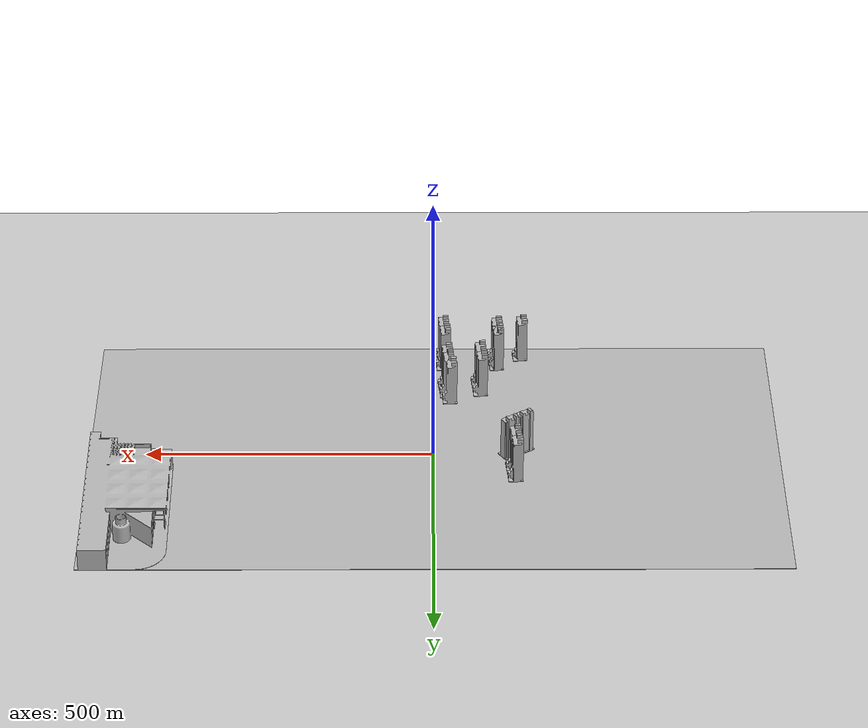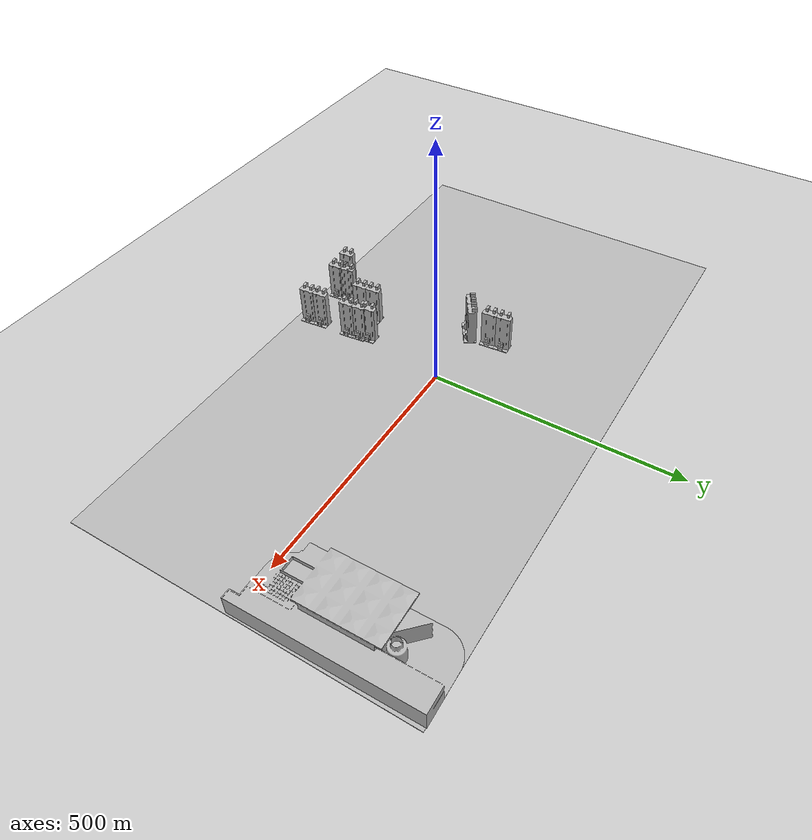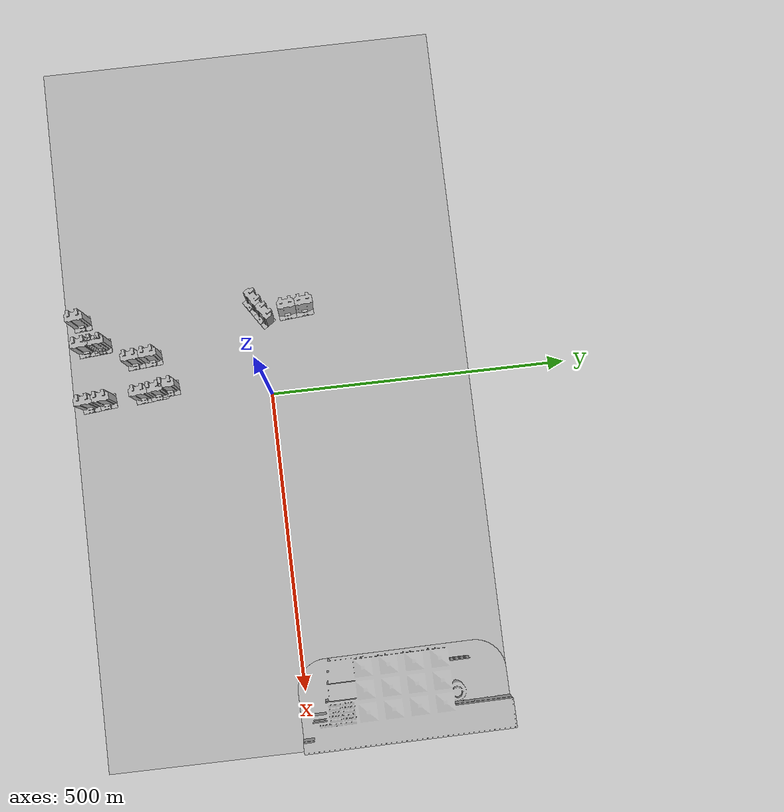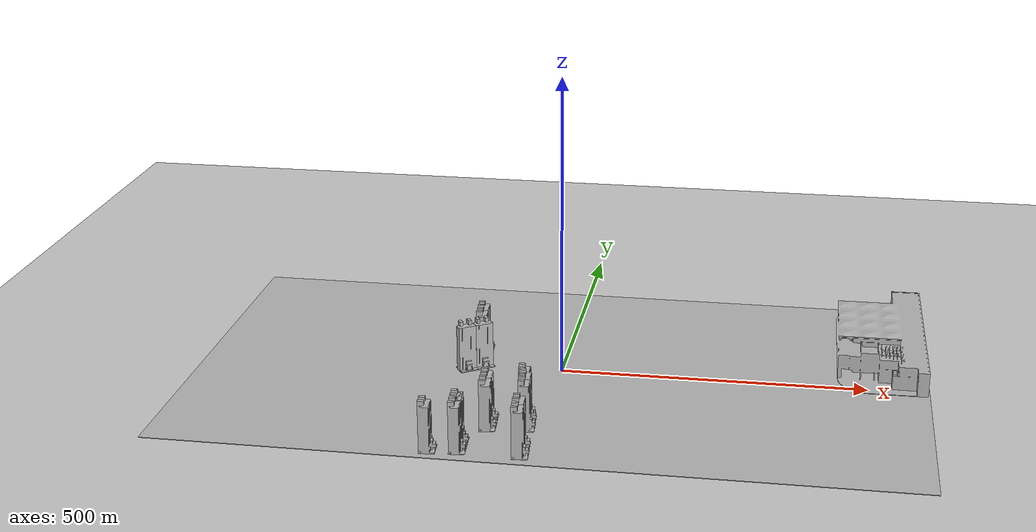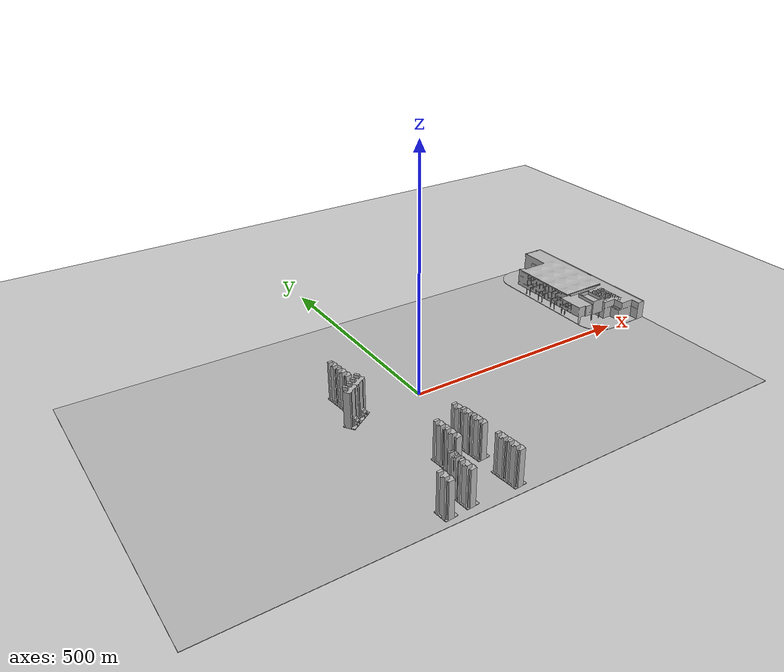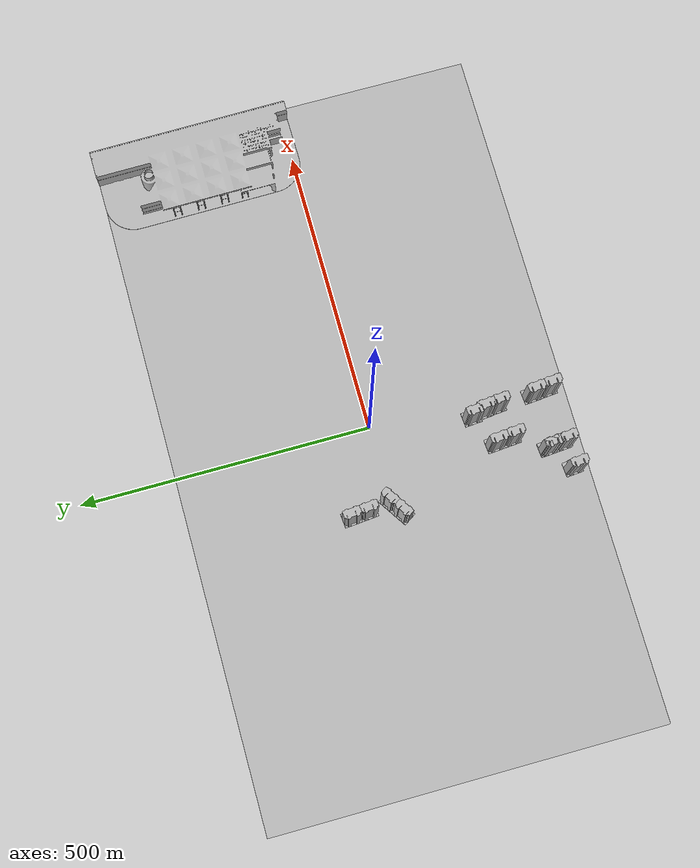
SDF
<sdf version="1.7">
 <world name="default">
  <model name="ground_plane">
   <static>1</static>
   <link name="link">
    <collision name="collision">
     <geometry><plane><normal>0 0 1</normal><size>1200 675</size></plane></geometry>
     <surface><friction><ode><mu>100</mu><mu2>50</mu2></ode></friction></surface>
    </collision>
    <visual name="visual">
     <cast_shadows>0</cast_shadows>
     <geometry><plane><normal>0 0 1</normal><size>1200 675</size></plane></geometry>
     <material>
      <script><uri>file://media/materials/scripts/gazebo.material</uri><name>Gazebo/Grey</name></script>
     </material>
    </visual>
   </link>
  </model>
  <model name="plane">
   <static>1</static>
   <link name="link_0">
    <inertial>
     <mass>1</mass>
     <inertia>
      <ixx>0.166667</ixx>
      <ixy>0</ixy>
      <ixz>0</ixz>
      <iyy>0.166667</iyy>
      <iyz>0</iyz>
      <izz>0.166667</izz>
     </inertia>
    </inertial>
    <pose>-1.2e-05 0 0 0 -0 0</pose>
    <visual name="visual">
     <geometry>
      <mesh><uri>/home/leejeonghun/model_editor_models/plane/scripts/plane.dae</uri><scale>1 1 1</scale></mesh>
     </geometry>
     <material>
      <lighting>1</lighting>
      <script>
       <uri>/home/leejeonghun/model_editor_models/plane/scripts/plane.jpg</uri>
       <name>__default__</name>
      </script>
      <shader type="pixel"/>
     </material>
    </visual>
    <collision name="collision">
     <geometry>
      <mesh><uri>/home/leejeonghun/model_editor_models/plane/scripts/plane.dae</uri><scale>1 1 1</scale></mesh>
     </geometry>
     <surface>
      <friction>
       <ode><mu>1</mu><mu2>1</mu2><fdir1>0 0 0</fdir1><slip1>0</slip1><slip2>0</slip2></ode>
       <torsional>
        <coefficient>1</coefficient>
        <patch_radius>0</patch_radius>
        <surface_radius>0</surface_radius>
        <use_patch_radius>1</use_patch_radius>
        <ode><slip>0</slip></ode>
       </torsional>
      </friction>
      <bounce><restitution_coefficient>0</restitution_coefficient><threshold>1e+06</threshold></bounce>
      <contact>
       <collide_without_contact>0</collide_without_contact>
       <collide_without_contact_bitmask>1</collide_without_contact_bitmask>
       <collide_bitmask>1</collide_bitmask>
       <ode>
        <soft_cfm>0</soft_cfm>
        <soft_erp>0.2</soft_erp>
        <kp>1e+13</kp>
        <kd>1</kd>
        <max_vel>0.01</max_vel>
        <min_depth>0</min_depth>
       </ode>
       <bullet>
        <split_impulse>1</split_impulse>
        <split_impulse_penetration_threshold>-0.01</split_impulse_penetration_threshold>
        <soft_cfm>0</soft_cfm>
        <soft_erp>0.2</soft_erp>
        <kp>1e+13</kp>
        <kd>1</kd>
       </bullet>
      </contact>
     </surface>
    </collision>
   </link>
   <static>0</static>
   <pose>-1.96292 -0.549666 0 0 -0 0</pose>
  </model>
  <model name="airport">
   <static>1</static>
   <link name="link_0">
    <inertial>
     <mass>1</mass>
     <inertia>
      <ixx>0.166667</ixx>
      <ixy>0</ixy>
      <ixz>0</ixz>
      <iyy>0.166667</iyy>
      <iyz>0</iyz>
      <izz>0.166667</izz>
     </inertia>
    </inertial>
    <pose>4e-06 1e-06 0 0 -0 1.58504</pose>
    <visual name="visual">
     <geometry>
      <mesh>
       <uri>/home/leejeonghun/model_editor_models/airport/scripts/airport.dae</uri>
       <scale>0.6 0.6 0.8</scale>
      </mesh>
     </geometry>
     <material>
      <lighting>1</lighting>
      <script>
       <uri>/home/leejeonghun/model_editor_models/airport/scripts/airporrt.jpg</uri>
       <name>__default__</name>
      </script>
      <shader type="pixel"><normal_map>__default__</normal_map></shader>
     </material>
    </visual>
    <collision name="collision">
     <geometry>
      <mesh>
       <uri>/home/leejeonghun/model_editor_models/airport/scripts/airport.dae</uri>
       <scale>0.6 0.6 0.8</scale>
      </mesh>
     </geometry>
     <surface>
      <friction>
       <ode><mu>1</mu><mu2>1</mu2><fdir1>0 0 0</fdir1><slip1>0</slip1><slip2>0</slip2></ode>
       <torsional>
        <coefficient>1</coefficient>
        <patch_radius>0</patch_radius>
        <surface_radius>0</surface_radius>
        <use_patch_radius>1</use_patch_radius>
        <ode><slip>0</slip></ode>
       </torsional>
      </friction>
      <bounce><restitution_coefficient>0</restitution_coefficient><threshold>1e+06</threshold></bounce>
      <contact>
       <collide_without_contact>0</collide_without_contact>
       <collide_without_contact_bitmask>1</collide_without_contact_bitmask>
       <collide_bitmask>1</collide_bitmask>
       <ode>
        <soft_cfm>0</soft_cfm>
        <soft_erp>0.2</soft_erp>
        <kp>1e+13</kp>
        <kd>1</kd>
        <max_vel>0.01</max_vel>
        <min_depth>0</min_depth>
       </ode>
       <bullet>
        <split_impulse>1</split_impulse>
        <split_impulse_penetration_threshold>-0.01</split_impulse_penetration_threshold>
        <soft_cfm>0</soft_cfm>
        <soft_erp>0.2</soft_erp>
        <kp>1e+13</kp>
        <kd>1</kd>
       </bullet>
      </contact>
     </surface>
    </collision>
   </link>
   <static>0</static>
   <pose>500.172 162.388 0.746826 0 -0 3.13851</pose>
  </model>
  <model name="apartment">
   <static>1</static>
   <link name="link_0">
    <inertial>
     <mass>1</mass>
     <inertia>
      <ixx>0.166667</ixx>
      <ixy>0</ixy>
      <ixz>0</ixz>
      <iyy>0.166667</iyy>
      <iyz>0</iyz>
      <izz>0.166667</izz>
     </inertia>
    </inertial>
    <pose>0.000226 2e-06 0 0 -0 0</pose>
    <visual name="visual">
     <geometry>
      <mesh>
       <uri>/home/leejeonghun/model_editor_models/apartment/scripts/apartment.dae</uri>
       <scale>0.4 0.4 0.5</scale>
      </mesh>
     </geometry>
     <material>
      <lighting>1</lighting>
      <script>
       <uri>/home/leejeonghun/model_editor_models/apartment/scripts/building.jpg</uri>
       <name>__default__</name>
      </script>
      <shader type="pixel"/>
     </material>
    </visual>
    <collision name="collision">
     <geometry>
      <mesh>
       <uri>/home/leejeonghun/model_editor_models/apartment/scripts/apartment.dae</uri>
       <scale>0.4 0.4 0.5</scale>
      </mesh>
     </geometry>
     <surface>
      <friction>
       <ode><mu>1</mu><mu2>1</mu2><fdir1>0 0 0</fdir1><slip1>0</slip1><slip2>0</slip2></ode>
       <torsional>
        <coefficient>1</coefficient>
        <patch_radius>0</patch_radius>
        <surface_radius>0</surface_radius>
        <use_patch_radius>1</use_patch_radius>
        <ode><slip>0</slip></ode>
       </torsional>
      </friction>
      <bounce><restitution_coefficient>0</restitution_coefficient><threshold>1e+06</threshold></bounce>
      <contact>
       <collide_without_contact>0</collide_without_contact>
       <collide_without_contact_bitmask>1</collide_without_contact_bitmask>
       <collide_bitmask>1</collide_bitmask>
       <ode>
        <soft_cfm>0</soft_cfm>
        <soft_erp>0.2</soft_erp>
        <kp>1e+13</kp>
        <kd>1</kd>
        <max_vel>0.01</max_vel>
        <min_depth>0</min_depth>
       </ode>
       <bullet>
        <split_impulse>1</split_impulse>
        <split_impulse_penetration_threshold>-0.01</split_impulse_penetration_threshold>
        <soft_cfm>0</soft_cfm>
        <soft_erp>0.2</soft_erp>
        <kp>1e+13</kp>
        <kd>1</kd>
       </bullet>
      </contact>
     </surface>
    </collision>
   </link>
   <static>0</static>
   <pose>-157.514 -14.5633 1.45895 0 -0 0.586882</pose>
  </model>
  <model name="apartment_clone">
   <static>1</static>
   <link name="link_0">
    <inertial>
     <mass>1</mass>
     <inertia>
      <ixx>0.166667</ixx>
      <ixy>0</ixy>
      <ixz>0</ixz>
      <iyy>0.166667</iyy>
      <iyz>0</iyz>
      <izz>0.166667</izz>
     </inertia>
    </inertial>
    <pose>0.000226 2e-06 0 0 -0 0</pose>
    <visual name="visual">
     <geometry>
      <mesh>
       <uri>/home/leejeonghun/model_editor_models/apartment/scripts/apartment.dae</uri>
       <scale>0.4 0.4 0.5</scale>
      </mesh>
     </geometry>
     <material>
      <lighting>1</lighting>
      <script>
       <uri>/home/leejeonghun/model_editor_models/apartment/scripts/building.jpg</uri>
       <name>__default__</name>
      </script>
      <shader type="pixel"/>
     </material>
    </visual>
    <collision name="collision">
     <geometry>
      <mesh>
       <uri>/home/leejeonghun/model_editor_models/apartment/scripts/apartment.dae</uri>
       <scale>0.4 0.4 0.5</scale>
      </mesh>
     </geometry>
     <surface>
      <friction>
       <ode><mu>1</mu><mu2>1</mu2><fdir1>0 0 0</fdir1><slip1>0</slip1><slip2>0</slip2></ode>
       <torsional>
        <coefficient>1</coefficient>
        <patch_radius>0</patch_radius>
        <surface_radius>0</surface_radius>
        <use_patch_radius>1</use_patch_radius>
        <ode><slip>0</slip></ode>
       </torsional>
      </friction>
      <bounce><restitution_coefficient>0</restitution_coefficient><threshold>1e+06</threshold></bounce>
      <contact>
       <collide_without_contact>0</collide_without_contact>
       <collide_without_contact_bitmask>1</collide_without_contact_bitmask>
       <collide_bitmask>1</collide_bitmask>
       <ode>
        <soft_cfm>0</soft_cfm>
        <soft_erp>0.2</soft_erp>
        <kp>1e+13</kp>
        <kd>1</kd>
        <max_vel>0.01</max_vel>
        <min_depth>0</min_depth>
       </ode>
       <bullet>
        <split_impulse>1</split_impulse>
        <split_impulse_penetration_threshold>-0.01</split_impulse_penetration_threshold>
        <soft_cfm>0</soft_cfm>
        <soft_erp>0.2</soft_erp>
        <kp>1e+13</kp>
        <kd>1</kd>
       </bullet>
      </contact>
     </surface>
    </collision>
   </link>
   <static>0</static>
   <pose>-132.523 1.79712 1.45895 0 -0 0.586882</pose>
  </model>
  <model name="apartment_clone_8">
   <static>1</static>
   <link name="link_0">
    <inertial>
     <mass>1</mass>
     <inertia>
      <ixx>0.166667</ixx>
      <ixy>0</ixy>
      <ixz>0</ixz>
      <iyy>0.166667</iyy>
      <iyz>0</iyz>
      <izz>0.166667</izz>
     </inertia>
    </inertial>
    <pose>0.000226 2e-06 0 0 -0 0</pose>
    <visual name="visual">
     <geometry>
      <mesh>
       <uri>/home/leejeonghun/model_editor_models/apartment/scripts/apartment.dae</uri>
       <scale>0.4 0.4 0.5</scale>
      </mesh>
     </geometry>
     <material>
      <lighting>1</lighting>
      <script>
       <uri>/home/leejeonghun/model_editor_models/apartment/scripts/building.jpg</uri>
       <name>__default__</name>
      </script>
      <shader type="pixel"/>
     </material>
    </visual>
    <collision name="collision">
     <geometry>
      <mesh>
       <uri>/home/leejeonghun/model_editor_models/apartment/scripts/apartment.dae</uri>
       <scale>0.4 0.4 0.5</scale>
      </mesh>
     </geometry>
     <surface>
      <friction>
       <ode><mu>1</mu><mu2>1</mu2><fdir1>0 0 0</fdir1><slip1>0</slip1><slip2>0</slip2></ode>
       <torsional>
        <coefficient>1</coefficient>
        <patch_radius>0</patch_radius>
        <surface_radius>0</surface_radius>
        <use_patch_radius>1</use_patch_radius>
        <ode><slip>0</slip></ode>
       </torsional>
      </friction>
      <bounce><restitution_coefficient>0</restitution_coefficient><threshold>1e+06</threshold></bounce>
      <contact>
       <collide_without_contact>0</collide_without_contact>
       <collide_without_contact_bitmask>1</collide_without_contact_bitmask>
       <collide_bitmask>1</collide_bitmask>
       <ode>
        <soft_cfm>0</soft_cfm>
        <soft_erp>0.2</soft_erp>
        <kp>1e+13</kp>
        <kd>1</kd>
        <max_vel>0.01</max_vel>
        <min_depth>0</min_depth>
       </ode>
       <bullet>
        <split_impulse>1</split_impulse>
        <split_impulse_penetration_threshold>-0.01</split_impulse_penetration_threshold>
        <soft_cfm>0</soft_cfm>
        <soft_erp>0.2</soft_erp>
        <kp>1e+13</kp>
        <kd>1</kd>
       </bullet>
      </contact>
     </surface>
    </collision>
   </link>
   <static>0</static>
   <pose>-139.6 40.295 1.45895 0 -0 1.65687</pose>
  </model>
  <model name="apartment_clone_8_clone">
   <static>1</static>
   <link name="link_0">
    <inertial>
     <mass>1</mass>
     <inertia>
      <ixx>0.166667</ixx>
      <ixy>0</ixy>
      <ixz>0</ixz>
      <iyy>0.166667</iyy>
      <iyz>0</iyz>
      <izz>0.166667</izz>
     </inertia>
    </inertial>
    <pose>0.000226 2e-06 0 0 -0 0</pose>
    <visual name="visual">
     <geometry>
      <mesh>
       <uri>/home/leejeonghun/model_editor_models/apartment/scripts/apartment.dae</uri>
       <scale>0.4 0.4 0.5</scale>
      </mesh>
     </geometry>
     <material>
      <lighting>1</lighting>
      <script>
       <uri>/home/leejeonghun/model_editor_models/apartment/scripts/building.jpg</uri>
       <name>__default__</name>
      </script>
      <shader type="pixel"/>
     </material>
    </visual>
    <collision name="collision">
     <geometry>
      <mesh>
       <uri>/home/leejeonghun/model_editor_models/apartment/scripts/apartment.dae</uri>
       <scale>0.4 0.4 0.5</scale>
      </mesh>
     </geometry>
     <surface>
      <friction>
       <ode><mu>1</mu><mu2>1</mu2><fdir1>0 0 0</fdir1><slip1>0</slip1><slip2>0</slip2></ode>
       <torsional>
        <coefficient>1</coefficient>
        <patch_radius>0</patch_radius>
        <surface_radius>0</surface_radius>
        <use_patch_radius>1</use_patch_radius>
        <ode><slip>0</slip></ode>
       </torsional>
      </friction>
      <bounce><restitution_coefficient>0</restitution_coefficient><threshold>1e+06</threshold></bounce>
      <contact>
       <collide_without_contact>0</collide_without_contact>
       <collide_without_contact_bitmask>1</collide_without_contact_bitmask>
       <collide_bitmask>1</collide_bitmask>
       <ode>
        <soft_cfm>0</soft_cfm>
        <soft_erp>0.2</soft_erp>
        <kp>1e+13</kp>
        <kd>1</kd>
        <max_vel>0.01</max_vel>
        <min_depth>0</min_depth>
       </ode>
       <bullet>
        <split_impulse>1</split_impulse>
        <split_impulse_penetration_threshold>-0.01</split_impulse_penetration_threshold>
        <soft_cfm>0</soft_cfm>
        <soft_erp>0.2</soft_erp>
        <kp>1e+13</kp>
        <kd>1</kd>
       </bullet>
      </contact>
     </surface>
    </collision>
   </link>
   <static>0</static>
   <pose>-142.231 69.7113 1.45895 0 -0 1.65687</pose>
  </model>
  <model name="apartment_0_clone_0_clone_1_clone_2">
   <static>1</static>
   <link name="link_0">
    <inertial>
     <mass>1</mass>
     <inertia>
      <ixx>0.166667</ixx>
      <ixy>0</ixy>
      <ixz>0</ixz>
      <iyy>0.166667</iyy>
      <iyz>0</iyz>
      <izz>0.166667</izz>
     </inertia>
    </inertial>
    <pose>0.000226 2e-06 0 0 -0 0</pose>
    <visual name="visual">
     <geometry>
      <mesh>
       <uri>/home/leejeonghun/model_editor_models/apartment/scripts/apartment.dae</uri>
       <scale>0.4 0.4 0.5</scale>
      </mesh>
     </geometry>
     <material>
      <lighting>1</lighting>
      <script>
       <uri>/home/leejeonghun/model_editor_models/apartment/scripts/building.jpg</uri>
       <name>__default__</name>
      </script>
      <shader type="pixel"/>
     </material>
    </visual>
    <collision name="collision">
     <geometry>
      <mesh>
       <uri>/home/leejeonghun/model_editor_models/apartment/scripts/apartment.dae</uri>
       <scale>0.4 0.4 0.5</scale>
      </mesh>
     </geometry>
     <surface>
      <friction>
       <ode><mu>1</mu><mu2>1</mu2><fdir1>0 0 0</fdir1><slip1>0</slip1><slip2>0</slip2></ode>
       <torsional>
        <coefficient>1</coefficient>
        <patch_radius>0</patch_radius>
        <surface_radius>0</surface_radius>
        <use_patch_radius>1</use_patch_radius>
        <ode><slip>0</slip></ode>
       </torsional>
      </friction>
      <bounce><restitution_coefficient>0</restitution_coefficient><threshold>1e+06</threshold></bounce>
      <contact>
       <collide_without_contact>0</collide_without_contact>
       <collide_without_contact_bitmask>1</collide_without_contact_bitmask>
       <collide_bitmask>1</collide_bitmask>
       <ode>
        <soft_cfm>0</soft_cfm>
        <soft_erp>0.2</soft_erp>
        <kp>1e+13</kp>
        <kd>1</kd>
        <max_vel>0.01</max_vel>
        <min_depth>0</min_depth>
       </ode>
       <bullet>
        <split_impulse>1</split_impulse>
        <split_impulse_penetration_threshold>-0.01</split_impulse_penetration_threshold>
        <soft_cfm>0</soft_cfm>
        <soft_erp>0.2</soft_erp>
        <kp>1e+13</kp>
        <kd>1</kd>
       </bullet>
      </contact>
     </surface>
    </collision>
   </link>
   <static>0</static>
   <pose>-112.912 -306.77 1.76839 0 -0 1.65207</pose>
  </model>
  <model name="apartment_0_clone_0_clone_1_clone_2_clone">
   <static>1</static>
   <link name="link_0">
    <inertial>
     <mass>1</mass>
     <inertia>
      <ixx>0.166667</ixx>
      <ixy>0</ixy>
      <ixz>0</ixz>
      <iyy>0.166667</iyy>
      <iyz>0</iyz>
      <izz>0.166667</izz>
     </inertia>
    </inertial>
    <pose>0.000226 2e-06 0 0 -0 0</pose>
    <visual name="visual">
     <geometry>
      <mesh>
       <uri>/home/leejeonghun/model_editor_models/apartment/scripts/apartment.dae</uri>
       <scale>0.4 0.4 0.5</scale>
      </mesh>
     </geometry>
     <material>
      <lighting>1</lighting>
      <script>
       <uri>/home/leejeonghun/model_editor_models/apartment/scripts/building.jpg</uri>
       <name>__default__</name>
      </script>
      <shader type="pixel"/>
     </material>
    </visual>
    <collision name="collision">
     <geometry>
      <mesh>
       <uri>/home/leejeonghun/model_editor_models/apartment/scripts/apartment.dae</uri>
       <scale>0.4 0.4 0.5</scale>
      </mesh>
     </geometry>
     <surface>
      <friction>
       <ode><mu>1</mu><mu2>1</mu2><fdir1>0 0 0</fdir1><slip1>0</slip1><slip2>0</slip2></ode>
       <torsional>
        <coefficient>1</coefficient>
        <patch_radius>0</patch_radius>
        <surface_radius>0</surface_radius>
        <use_patch_radius>1</use_patch_radius>
        <ode><slip>0</slip></ode>
       </torsional>
      </friction>
      <bounce><restitution_coefficient>0</restitution_coefficient><threshold>1e+06</threshold></bounce>
      <contact>
       <collide_without_contact>0</collide_without_contact>
       <collide_without_contact_bitmask>1</collide_without_contact_bitmask>
       <collide_bitmask>1</collide_bitmask>
       <ode>
        <soft_cfm>0</soft_cfm>
        <soft_erp>0.2</soft_erp>
        <kp>1e+13</kp>
        <kd>1</kd>
        <max_vel>0.01</max_vel>
        <min_depth>0</min_depth>
       </ode>
       <bullet>
        <split_impulse>1</split_impulse>
        <split_impulse_penetration_threshold>-0.01</split_impulse_penetration_threshold>
        <soft_cfm>0</soft_cfm>
        <soft_erp>0.2</soft_erp>
        <kp>1e+13</kp>
        <kd>1</kd>
       </bullet>
      </contact>
     </surface>
    </collision>
   </link>
   <static>0</static>
   <pose>-114.992 -280.77 1.76839 0 -0 1.65207</pose>
  </model>
  <model name="apartment_0_clone_0_clone_1_clone_2_clone_0">
   <static>1</static>
   <link name="link_0">
    <inertial>
     <mass>1</mass>
     <inertia>
      <ixx>0.166667</ixx>
      <ixy>0</ixy>
      <ixz>0</ixz>
      <iyy>0.166667</iyy>
      <iyz>0</iyz>
      <izz>0.166667</izz>
     </inertia>
    </inertial>
    <pose>0.000226 2e-06 0 0 -0 0</pose>
    <visual name="visual">
     <geometry>
      <mesh>
       <uri>/home/leejeonghun/model_editor_models/apartment/scripts/apartment.dae</uri>
       <scale>0.4 0.4 0.5</scale>
      </mesh>
     </geometry>
     <material>
      <lighting>1</lighting>
      <script>
       <uri>/home/leejeonghun/model_editor_models/apartment/scripts/building.jpg</uri>
       <name>__default__</name>
      </script>
      <shader type="pixel"/>
     </material>
    </visual>
    <collision name="collision">
     <geometry>
      <mesh>
       <uri>/home/leejeonghun/model_editor_models/apartment/scripts/apartment.dae</uri>
       <scale>0.4 0.4 0.5</scale>
      </mesh>
     </geometry>
     <surface>
      <friction>
       <ode><mu>1</mu><mu2>1</mu2><fdir1>0 0 0</fdir1><slip1>0</slip1><slip2>0</slip2></ode>
       <torsional>
        <coefficient>1</coefficient>
        <patch_radius>0</patch_radius>
        <surface_radius>0</surface_radius>
        <use_patch_radius>1</use_patch_radius>
        <ode><slip>0</slip></ode>
       </torsional>
      </friction>
      <bounce><restitution_coefficient>0</restitution_coefficient><threshold>1e+06</threshold></bounce>
      <contact>
       <collide_without_contact>0</collide_without_contact>
       <collide_without_contact_bitmask>1</collide_without_contact_bitmask>
       <collide_bitmask>1</collide_bitmask>
       <ode>
        <soft_cfm>0</soft_cfm>
        <soft_erp>0.2</soft_erp>
        <kp>1e+13</kp>
        <kd>1</kd>
        <max_vel>0.01</max_vel>
        <min_depth>0</min_depth>
       </ode>
       <bullet>
        <split_impulse>1</split_impulse>
        <split_impulse_penetration_threshold>-0.01</split_impulse_penetration_threshold>
        <soft_cfm>0</soft_cfm>
        <soft_erp>0.2</soft_erp>
        <kp>1e+13</kp>
        <kd>1</kd>
       </bullet>
      </contact>
     </surface>
    </collision>
   </link>
   <static>0</static>
   <pose>-115.026 -280.071 1.76839 0 -0 1.65207</pose>
  </model>
  <model name="apartment_0_clone_0_clone_1_clone_2_clone_1">
   <static>1</static>
   <link name="link_0">
    <inertial>
     <mass>1</mass>
     <inertia>
      <ixx>0.166667</ixx>
      <ixy>0</ixy>
      <ixz>0</ixz>
      <iyy>0.166667</iyy>
      <iyz>0</iyz>
      <izz>0.166667</izz>
     </inertia>
    </inertial>
    <pose>0.000226 2e-06 0 0 -0 0</pose>
    <visual name="visual">
     <geometry>
      <mesh>
       <uri>/home/leejeonghun/model_editor_models/apartment/scripts/apartment.dae</uri>
       <scale>0.4 0.4 0.5</scale>
      </mesh>
     </geometry>
     <material>
      <lighting>1</lighting>
      <script>
       <uri>/home/leejeonghun/model_editor_models/apartment/scripts/building.jpg</uri>
       <name>__default__</name>
      </script>
      <shader type="pixel"/>
     </material>
    </visual>
    <collision name="collision">
     <geometry>
      <mesh>
       <uri>/home/leejeonghun/model_editor_models/apartment/scripts/apartment.dae</uri>
       <scale>0.4 0.4 0.5</scale>
      </mesh>
     </geometry>
     <surface>
      <friction>
       <ode><mu>1</mu><mu2>1</mu2><fdir1>0 0 0</fdir1><slip1>0</slip1><slip2>0</slip2></ode>
       <torsional>
        <coefficient>1</coefficient>
        <patch_radius>0</patch_radius>
        <surface_radius>0</surface_radius>
        <use_patch_radius>1</use_patch_radius>
        <ode><slip>0</slip></ode>
       </torsional>
      </friction>
      <bounce><restitution_coefficient>0</restitution_coefficient><threshold>1e+06</threshold></bounce>
      <contact>
       <collide_without_contact>0</collide_without_contact>
       <collide_without_contact_bitmask>1</collide_without_contact_bitmask>
       <collide_bitmask>1</collide_bitmask>
       <ode>
        <soft_cfm>0</soft_cfm>
        <soft_erp>0.2</soft_erp>
        <kp>1e+13</kp>
        <kd>1</kd>
        <max_vel>0.01</max_vel>
        <min_depth>0</min_depth>
       </ode>
       <bullet>
        <split_impulse>1</split_impulse>
        <split_impulse_penetration_threshold>-0.01</split_impulse_penetration_threshold>
        <soft_cfm>0</soft_cfm>
        <soft_erp>0.2</soft_erp>
        <kp>1e+13</kp>
        <kd>1</kd>
       </bullet>
      </contact>
     </surface>
    </collision>
   </link>
   <static>0</static>
   <pose>-157.945 -311.186 1.76839 0 -0 1.65207</pose>
  </model>
  <model name="apartment_0_clone_0_clone_1_clone_2_clone_0_clone">
   <static>1</static>
   <link name="link_0">
    <inertial>
     <mass>1</mass>
     <inertia>
      <ixx>0.166667</ixx>
      <ixy>0</ixy>
      <ixz>0</ixz>
      <iyy>0.166667</iyy>
      <iyz>0</iyz>
      <izz>0.166667</izz>
     </inertia>
    </inertial>
    <pose>0.000226 2e-06 0 0 -0 0</pose>
    <visual name="visual">
     <geometry>
      <mesh>
       <uri>/home/leejeonghun/model_editor_models/apartment/scripts/apartment.dae</uri>
       <scale>0.4 0.4 0.5</scale>
      </mesh>
     </geometry>
     <material>
      <lighting>1</lighting>
      <script>
       <uri>/home/leejeonghun/model_editor_models/apartment/scripts/building.jpg</uri>
       <name>__default__</name>
      </script>
      <shader type="pixel"/>
     </material>
    </visual>
    <collision name="collision">
     <geometry>
      <mesh>
       <uri>/home/leejeonghun/model_editor_models/apartment/scripts/apartment.dae</uri>
       <scale>0.4 0.4 0.5</scale>
      </mesh>
     </geometry>
     <surface>
      <friction>
       <ode><mu>1</mu><mu2>1</mu2><fdir1>0 0 0</fdir1><slip1>0</slip1><slip2>0</slip2></ode>
       <torsional>
        <coefficient>1</coefficient>
        <patch_radius>0</patch_radius>
        <surface_radius>0</surface_radius>
        <use_patch_radius>1</use_patch_radius>
        <ode><slip>0</slip></ode>
       </torsional>
      </friction>
      <bounce><restitution_coefficient>0</restitution_coefficient><threshold>1e+06</threshold></bounce>
      <contact>
       <collide_without_contact>0</collide_without_contact>
       <collide_without_contact_bitmask>1</collide_without_contact_bitmask>
       <collide_bitmask>1</collide_bitmask>
       <ode>
        <soft_cfm>0</soft_cfm>
        <soft_erp>0.2</soft_erp>
        <kp>1e+13</kp>
        <kd>1</kd>
        <max_vel>0.01</max_vel>
        <min_depth>0</min_depth>
       </ode>
       <bullet>
        <split_impulse>1</split_impulse>
        <split_impulse_penetration_threshold>-0.01</split_impulse_penetration_threshold>
        <soft_cfm>0</soft_cfm>
        <soft_erp>0.2</soft_erp>
        <kp>1e+13</kp>
        <kd>1</kd>
       </bullet>
      </contact>
     </surface>
    </collision>
   </link>
   <static>0</static>
   <pose>-82.5682 -225.726 1.76839 0 -0 1.65207</pose>
  </model>
  <model name="apartment_0_clone_0_clone_1_clone_2_clone_0_clone_0">
   <static>1</static>
   <link name="link_0">
    <inertial>
     <mass>1</mass>
     <inertia>
      <ixx>0.166667</ixx>
      <ixy>0</ixy>
      <ixz>0</ixz>
      <iyy>0.166667</iyy>
      <iyz>0</iyz>
      <izz>0.166667</izz>
     </inertia>
    </inertial>
    <pose>0.000226 2e-06 0 0 -0 0</pose>
    <visual name="visual">
     <geometry>
      <mesh>
       <uri>/home/leejeonghun/model_editor_models/apartment/scripts/apartment.dae</uri>
       <scale>0.4 0.4 0.5</scale>
      </mesh>
     </geometry>
     <material>
      <lighting>1</lighting>
      <script>
       <uri>/home/leejeonghun/model_editor_models/apartment/scripts/building.jpg</uri>
       <name>__default__</name>
      </script>
      <shader type="pixel"/>
     </material>
    </visual>
    <collision name="collision">
     <geometry>
      <mesh>
       <uri>/home/leejeonghun/model_editor_models/apartment/scripts/apartment.dae</uri>
       <scale>0.4 0.4 0.5</scale>
      </mesh>
     </geometry>
     <surface>
      <friction>
       <ode><mu>1</mu><mu2>1</mu2><fdir1>0 0 0</fdir1><slip1>0</slip1><slip2>0</slip2></ode>
       <torsional>
        <coefficient>1</coefficient>
        <patch_radius>0</patch_radius>
        <surface_radius>0</surface_radius>
        <use_patch_radius>1</use_patch_radius>
        <ode><slip>0</slip></ode>
       </torsional>
      </friction>
      <bounce><restitution_coefficient>0</restitution_coefficient><threshold>1e+06</threshold></bounce>
      <contact>
       <collide_without_contact>0</collide_without_contact>
       <collide_without_contact_bitmask>1</collide_without_contact_bitmask>
       <collide_bitmask>1</collide_bitmask>
       <ode>
        <soft_cfm>0</soft_cfm>
        <soft_erp>0.2</soft_erp>
        <kp>1e+13</kp>
        <kd>1</kd>
        <max_vel>0.01</max_vel>
        <min_depth>0</min_depth>
       </ode>
       <bullet>
        <split_impulse>1</split_impulse>
        <split_impulse_penetration_threshold>-0.01</split_impulse_penetration_threshold>
        <soft_cfm>0</soft_cfm>
        <soft_erp>0.2</soft_erp>
        <kp>1e+13</kp>
        <kd>1</kd>
       </bullet>
      </contact>
     </surface>
    </collision>
   </link>
   <static>0</static>
   <pose>-85.0618 -196.246 1.76839 0 -0 1.65207</pose>
  </model>
  <model name="apartment_0_clone_0_clone_1_clone_2_clone_0_clone_1">
   <static>1</static>
   <link name="link_0">
    <inertial>
     <mass>1</mass>
     <inertia>
      <ixx>0.166667</ixx>
      <ixy>0</ixy>
      <ixz>0</ixz>
      <iyy>0.166667</iyy>
      <iyz>0</iyz>
      <izz>0.166667</izz>
     </inertia>
    </inertial>
    <pose>0.000226 2e-06 0 0 -0 0</pose>
    <visual name="visual">
     <geometry>
      <mesh>
       <uri>/home/leejeonghun/model_editor_models/apartment/scripts/apartment.dae</uri>
       <scale>0.4 0.4 0.5</scale>
      </mesh>
     </geometry>
     <material>
      <lighting>1</lighting>
      <script>
       <uri>/home/leejeonghun/model_editor_models/apartment/scripts/building.jpg</uri>
       <name>__default__</name>
      </script>
      <shader type="pixel"/>
     </material>
    </visual>
    <collision name="collision">
     <geometry>
      <mesh>
       <uri>/home/leejeonghun/model_editor_models/apartment/scripts/apartment.dae</uri>
       <scale>0.4 0.4 0.5</scale>
      </mesh>
     </geometry>
     <surface>
      <friction>
       <ode><mu>1</mu><mu2>1</mu2><fdir1>0 0 0</fdir1><slip1>0</slip1><slip2>0</slip2></ode>
       <torsional>
        <coefficient>1</coefficient>
        <patch_radius>0</patch_radius>
        <surface_radius>0</surface_radius>
        <use_patch_radius>1</use_patch_radius>
        <ode><slip>0</slip></ode>
       </torsional>
      </friction>
      <bounce><restitution_coefficient>0</restitution_coefficient><threshold>1e+06</threshold></bounce>
      <contact>
       <collide_without_contact>0</collide_without_contact>
       <collide_without_contact_bitmask>1</collide_without_contact_bitmask>
       <collide_bitmask>1</collide_bitmask>
       <ode>
        <soft_cfm>0</soft_cfm>
        <soft_erp>0.2</soft_erp>
        <kp>1e+13</kp>
        <kd>1</kd>
        <max_vel>0.01</max_vel>
        <min_depth>0</min_depth>
       </ode>
       <bullet>
        <split_impulse>1</split_impulse>
        <split_impulse_penetration_threshold>-0.01</split_impulse_penetration_threshold>
        <soft_cfm>0</soft_cfm>
        <soft_erp>0.2</soft_erp>
        <kp>1e+13</kp>
        <kd>1</kd>
       </bullet>
      </contact>
     </surface>
    </collision>
   </link>
   <static>0</static>
   <pose>-17.2291 -309.162 1.76839 0 -0 1.65207</pose>
  </model>
  <model name="apartment_0_clone_0_clone_1_clone_2_clone_0_clone_2">
   <static>1</static>
   <link name="link_0">
    <inertial>
     <mass>1</mass>
     <inertia>
      <ixx>0.166667</ixx>
      <ixy>0</ixy>
      <ixz>0</ixz>
      <iyy>0.166667</iyy>
      <iyz>0</iyz>
      <izz>0.166667</izz>
     </inertia>
    </inertial>
    <pose>0.000226 2e-06 0 0 -0 0</pose>
    <visual name="visual">
     <geometry>
      <mesh>
       <uri>/home/leejeonghun/model_editor_models/apartment/scripts/apartment.dae</uri>
       <scale>0.4 0.4 0.5</scale>
      </mesh>
     </geometry>
     <material>
      <lighting>1</lighting>
      <script>
       <uri>/home/leejeonghun/model_editor_models/apartment/scripts/building.jpg</uri>
       <name>__default__</name>
      </script>
      <shader type="pixel"/>
     </material>
    </visual>
    <collision name="collision">
     <geometry>
      <mesh>
       <uri>/home/leejeonghun/model_editor_models/apartment/scripts/apartment.dae</uri>
       <scale>0.4 0.4 0.5</scale>
      </mesh>
     </geometry>
     <surface>
      <friction>
       <ode><mu>1</mu><mu2>1</mu2><fdir1>0 0 0</fdir1><slip1>0</slip1><slip2>0</slip2></ode>
       <torsional>
        <coefficient>1</coefficient>
        <patch_radius>0</patch_radius>
        <surface_radius>0</surface_radius>
        <use_patch_radius>1</use_patch_radius>
        <ode><slip>0</slip></ode>
       </torsional>
      </friction>
      <bounce><restitution_coefficient>0</restitution_coefficient><threshold>1e+06</threshold></bounce>
      <contact>
       <collide_without_contact>0</collide_without_contact>
       <collide_without_contact_bitmask>1</collide_without_contact_bitmask>
       <collide_bitmask>1</collide_bitmask>
       <ode>
        <soft_cfm>0</soft_cfm>
        <soft_erp>0.2</soft_erp>
        <kp>1e+13</kp>
        <kd>1</kd>
        <max_vel>0.01</max_vel>
        <min_depth>0</min_depth>
       </ode>
       <bullet>
        <split_impulse>1</split_impulse>
        <split_impulse_penetration_threshold>-0.01</split_impulse_penetration_threshold>
        <soft_cfm>0</soft_cfm>
        <soft_erp>0.2</soft_erp>
        <kp>1e+13</kp>
        <kd>1</kd>
       </bullet>
      </contact>
     </surface>
    </collision>
   </link>
   <static>0</static>
   <pose>-30.5786 -171.784 1.76839 0 -0 1.65207</pose>
  </model>
  <model name="apartment_0_clone_0_clone_1_clone_2_clone_0_clone_3">
   <static>1</static>
   <link name="link_0">
    <inertial>
     <mass>1</mass>
     <inertia>
      <ixx>0.166667</ixx>
      <ixy>0</ixy>
      <ixz>0</ixz>
      <iyy>0.166667</iyy>
      <iyz>0</iyz>
      <izz>0.166667</izz>
     </inertia>
    </inertial>
    <pose>0.000226 2e-06 0 0 -0 0</pose>
    <visual name="visual">
     <geometry>
      <mesh>
       <uri>/home/leejeonghun/model_editor_models/apartment/scripts/apartment.dae</uri>
       <scale>0.4 0.4 0.5</scale>
      </mesh>
     </geometry>
     <material>
      <lighting>1</lighting>
      <script>
       <uri>/home/leejeonghun/model_editor_models/apartment/scripts/building.jpg</uri>
       <name>__default__</name>
      </script>
      <shader type="pixel"/>
     </material>
    </visual>
    <collision name="collision">
     <geometry>
      <mesh>
       <uri>/home/leejeonghun/model_editor_models/apartment/scripts/apartment.dae</uri>
       <scale>0.4 0.4 0.5</scale>
      </mesh>
     </geometry>
     <surface>
      <friction>
       <ode><mu>1</mu><mu2>1</mu2><fdir1>0 0 0</fdir1><slip1>0</slip1><slip2>0</slip2></ode>
       <torsional>
        <coefficient>1</coefficient>
        <patch_radius>0</patch_radius>
        <surface_radius>0</surface_radius>
        <use_patch_radius>1</use_patch_radius>
        <ode><slip>0</slip></ode>
       </torsional>
      </friction>
      <bounce><restitution_coefficient>0</restitution_coefficient><threshold>1e+06</threshold></bounce>
      <contact>
       <collide_without_contact>0</collide_without_contact>
       <collide_without_contact_bitmask>1</collide_without_contact_bitmask>
       <collide_bitmask>1</collide_bitmask>
       <ode>
        <soft_cfm>0</soft_cfm>
        <soft_erp>0.2</soft_erp>
        <kp>1e+13</kp>
        <kd>1</kd>
        <max_vel>0.01</max_vel>
        <min_depth>0</min_depth>
       </ode>
       <bullet>
        <split_impulse>1</split_impulse>
        <split_impulse_penetration_threshold>-0.01</split_impulse_penetration_threshold>
        <soft_cfm>0</soft_cfm>
        <soft_erp>0.2</soft_erp>
        <kp>1e+13</kp>
        <kd>1</kd>
       </bullet>
      </contact>
     </surface>
    </collision>
   </link>
   <static>0</static>
   <pose>-25.8472 -192.183 1.76839 0 -0 1.65207</pose>
  </model>
  <model name="apartment_0_clone_0_clone_1_clone_2_clone_0_clone_4">
   <static>1</static>
   <link name="link_0">
    <inertial>
     <mass>1</mass>
     <inertia>
      <ixx>0.166667</ixx>
      <ixy>0</ixy>
      <ixz>0</ixz>
      <iyy>0.166667</iyy>
      <iyz>0</iyz>
      <izz>0.166667</izz>
     </inertia>
    </inertial>
    <pose>0.000226 2e-06 0 0 -0 0</pose>
    <visual name="visual">
     <geometry>
      <mesh>
       <uri>/home/leejeonghun/model_editor_models/apartment/scripts/apartment.dae</uri>
       <scale>0.4 0.4 0.5</scale>
      </mesh>
     </geometry>
     <material>
      <lighting>1</lighting>
      <script>
       <uri>/home/leejeonghun/model_editor_models/apartment/scripts/building.jpg</uri>
       <name>__default__</name>
      </script>
      <shader type="pixel"/>
     </material>
    </visual>
    <collision name="collision">
     <geometry>
      <mesh>
       <uri>/home/leejeonghun/model_editor_models/apartment/scripts/apartment.dae</uri>
       <scale>0.4 0.4 0.5</scale>
      </mesh>
     </geometry>
     <surface>
      <friction>
       <ode><mu>1</mu><mu2>1</mu2><fdir1>0 0 0</fdir1><slip1>0</slip1><slip2>0</slip2></ode>
       <torsional>
        <coefficient>1</coefficient>
        <patch_radius>0</patch_radius>
        <surface_radius>0</surface_radius>
        <use_patch_radius>1</use_patch_radius>
        <ode><slip>0</slip></ode>
       </torsional>
      </friction>
      <bounce><restitution_coefficient>0</restitution_coefficient><threshold>1e+06</threshold></bounce>
      <contact>
       <collide_without_contact>0</collide_without_contact>
       <collide_without_contact_bitmask>1</collide_without_contact_bitmask>
       <collide_bitmask>1</collide_bitmask>
       <ode>
        <soft_cfm>0</soft_cfm>
        <soft_erp>0.2</soft_erp>
        <kp>1e+13</kp>
        <kd>1</kd>
        <max_vel>0.01</max_vel>
        <min_depth>0</min_depth>
       </ode>
       <bullet>
        <split_impulse>1</split_impulse>
        <split_impulse_penetration_threshold>-0.01</split_impulse_penetration_threshold>
        <soft_cfm>0</soft_cfm>
        <soft_erp>0.2</soft_erp>
        <kp>1e+13</kp>
        <kd>1</kd>
       </bullet>
      </contact>
     </surface>
    </collision>
   </link>
   <static>0</static>
   <pose>-23.1081 -217.574 1.76839 0 -0 1.65207</pose>
  </model>
  <model name="apartment_0_clone_0_clone_1_clone_2_clone_2_clone_clone_2">
   <static>1</static>
   <link name="link_0">
    <inertial>
     <mass>1</mass>
     <inertia>
      <ixx>0.166667</ixx>
      <ixy>0</ixy>
      <ixz>0</ixz>
      <iyy>0.166667</iyy>
      <iyz>0</iyz>
      <izz>0.166667</izz>
     </inertia>
    </inertial>
    <pose>0.000226 2e-06 0 0 -0 0</pose>
    <visual name="visual">
     <geometry>
      <mesh>
       <uri>/home/leejeonghun/model_editor_models/apartment/scripts/apartment.dae</uri>
       <scale>0.4 0.4 0.5</scale>
      </mesh>
     </geometry>
     <material>
      <lighting>1</lighting>
      <script>
       <uri>/home/leejeonghun/model_editor_models/apartment/scripts/building.jpg</uri>
       <name>__default__</name>
      </script>
      <shader type="pixel"/>
     </material>
    </visual>
    <collision name="collision">
     <geometry>
      <mesh>
       <uri>/home/leejeonghun/model_editor_models/apartment/scripts/apartment.dae</uri>
       <scale>0.4 0.4 0.5</scale>
      </mesh>
     </geometry>
     <surface>
      <friction>
       <ode><mu>1</mu><mu2>1</mu2><fdir1>0 0 0</fdir1><slip1>0</slip1><slip2>0</slip2></ode>
       <torsional>
        <coefficient>1</coefficient>
        <patch_radius>0</patch_radius>
        <surface_radius>0</surface_radius>
        <use_patch_radius>1</use_patch_radius>
        <ode><slip>0</slip></ode>
       </torsional>
      </friction>
      <bounce><restitution_coefficient>0</restitution_coefficient><threshold>1e+06</threshold></bounce>
      <contact>
       <collide_without_contact>0</collide_without_contact>
       <collide_without_contact_bitmask>1</collide_without_contact_bitmask>
       <collide_bitmask>1</collide_bitmask>
       <ode>
        <soft_cfm>0</soft_cfm>
        <soft_erp>0.2</soft_erp>
        <kp>1e+13</kp>
        <kd>1</kd>
        <max_vel>0.01</max_vel>
        <min_depth>0</min_depth>
       </ode>
       <bullet>
        <split_impulse>1</split_impulse>
        <split_impulse_penetration_threshold>-0.01</split_impulse_penetration_threshold>
        <soft_cfm>0</soft_cfm>
        <soft_erp>0.2</soft_erp>
        <kp>1e+13</kp>
        <kd>1</kd>
       </bullet>
      </contact>
     </surface>
    </collision>
   </link>
   <static>0</static>
   <pose>-19.9954 -280.513 1.76839 0 -0 1.65207</pose>
  </model>
 </world>
</sdf>
